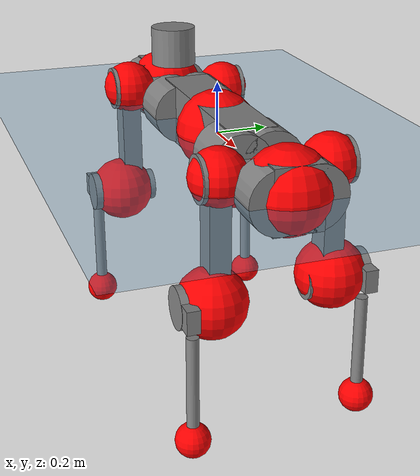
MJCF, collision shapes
<mujoco model="anymal_c">
  <compiler angle="radian" assetdir="assets" balanceinertia="true" inertiafromgeom="false"/>

  <option timestep="0.005" density="1.2" viscosity="2e-05"/>

  <size nkey="1"/>

  <visual>
    <quality shadowsize="8192"/>
    <map shadowclip="0.5"/>
  </visual>

  <default>
    <default class="/">
      <material specular="0" shininess="0.25"/>
      <geom contype="0" conaffinity="0" group="1" solref="-1000 -80"/>
      <site size="0.01 0.005 0.005" group="5"/>
      <general forcelimited="true" forcerange="-80 80" biastype="affine" gainprm="80" biasprm="0 -80 -2"/>
      <default class="anymal_c">
        <joint armature="0.01" damping="0.01" frictionloss="0.1"/>
        <default class="visual">
          <geom type="mesh" group="2"/>
          <default class="visual_zflip"/>
        </default>
        <default class="collision">
          <geom type="cylinder" group="3"/>
          <default class="foot">
            <geom size="0.03 0 0" type="sphere" condim="6" priority="1" friction="0.8 0.02 0.01" solimp="0.015 1 0.03"/>
          </default>
        </default>
      </default>
      <default class="reward_collision_sphere">
        <geom group="5" rgba="1 0 0 1"/>
      </default>
    </default>
  </default>

  <asset>
    <texture type="skybox" colorspace="auto" name="//unnamed_texture_0" builtin="gradient" rgb1="0.95 0.95 0.95" rgb2="0.95 0.95 0.95" width="100" height="600"/>
    <texture type="2d" colorspace="auto" name="texplane" builtin="checker" rgb1="0.345 0.575 0.748" rgb2="0.345 0.575 0.748" markrgb="1 1 1" width="512" height="512"/>
    <texture type="2d" colorspace="linear" name="base" file="base.png"/>
    <texture type="2d" colorspace="linear" name="top_shell" file="top_shell.png"/>
    <texture type="2d" colorspace="linear" name="bottom_shell" file="bottom_shell.png"/>
    <texture type="2d" colorspace="linear" name="remote" file="remote.png"/>
    <texture type="2d" colorspace="linear" name="hatch" file="hatch.png"/>
    <texture type="2d" colorspace="linear" name="handle" file="handle.png"/>
    <texture type="2d" colorspace="linear" name="face" file="face.png"/>
    <texture type="2d" colorspace="linear" name="battery" file="battery.png"/>
    <texture type="2d" colorspace="linear" name="lidar_cage" file="lidar_cage.png"/>
    <texture type="2d" colorspace="linear" name="depth_camera" file="depth_camera.png"/>
    <texture type="2d" colorspace="linear" name="wide_angle_camera" file="wide_angle_camera.png"/>
    <texture type="2d" colorspace="linear" name="lidar" file="lidar.png"/>
    <texture type="2d" colorspace="linear" name="drive" file="drive.png"/>
    <texture type="2d" colorspace="linear" name="hip_l" file="hip_l.png"/>
    <texture type="2d" colorspace="linear" name="shank_l" file="shank_l.png"/>
    <texture type="2d" colorspace="linear" name="foot" file="foot.png"/>
    <texture type="2d" colorspace="linear" name="thigh" file="thigh.png"/>
    <texture type="2d" colorspace="linear" name="shank_r" file="shank_r.png"/>
    <texture type="2d" colorspace="linear" name="hip_r" file="hip_r.png"/>
    <material name="MatPlane" class="/" texture="texplane" texuniform="true" texrepeat="2 2" specular="0.9" shininess="0.5"/>
    <material name="black_plastic" class="/" rgba="0.007 0.007 0.007 1"/>
    <material name="green" class="/" rgba="0.052 0.178 0.033 1"/>
    <material name="red" class="/" rgba="0.178 0.006 0.005 1"/>
    <material name="yellow" class="/" rgba="0.178 0.119 0.006 1"/>
    <material name="lwl" class="/" rgba="0.8 0.8 0.8 1"/>
    <material name="base" class="/" texture="base"/>
    <material name="top_shell" class="/" texture="top_shell"/>
    <material name="bottom_shell" class="/" texture="bottom_shell"/>
    <material name="hip_l" class="/" texture="hip_l"/>
    <material name="thigh" class="/" texture="thigh"/>
    <material name="shank_l" class="/" texture="shank_l"/>
    <material name="foot" class="/" texture="foot"/>
    <material name="hip_r" class="/" texture="hip_r"/>
    <material name="shank" class="/" texture="shank_r"/>
    <material name="hatch" class="/" texture="hatch"/>
    <material name="remote" class="/" texture="remote"/>
    <material name="handle" class="/" texture="handle"/>
    <material name="face" class="/" texture="face"/>
    <material name="depth_camera" class="/" texture="depth_camera"/>
    <material name="wide_angle_camera" class="/" texture="wide_angle_camera"/>
    <material name="battery" class="/" texture="battery"/>
    <material name="lidar_cage" class="/" texture="lidar_cage"/>
    <material name="lidar" class="/" texture="lidar"/>
    <material name="drive" class="/" texture="drive"/>
    <mesh name="base_0" class="/" file="base_0.obj"/>
    <mesh name="base_1" class="/" file="base_1.obj"/>
    <mesh name="base_2" class="/" file="base_2.obj"/>
    <mesh name="base_3" class="/" file="base_3.obj"/>
    <mesh name="base_4" class="/" file="base_4.obj"/>
    <mesh name="base_5" class="/" file="base_5.obj"/>
    <mesh name="top_shell" class="/" file="top_shell.obj"/>
    <mesh name="bottom_shell" class="/" file="bottom_shell.obj"/>
    <mesh name="remote" class="/" file="remote.obj"/>
    <mesh name="handle" class="/" file="handle.obj"/>
    <mesh name="face" class="/" file="face.obj"/>
    <mesh name="wide_angle_camera" class="/" file="wide_angle_camera.obj"/>
    <mesh name="depth_camera" class="/" file="depth_camera.obj"/>
    <mesh name="battery" class="/" file="battery.obj"/>
    <mesh name="lidar_cage" class="/" file="lidar_cage.obj"/>
    <mesh name="lidar" class="/" file="lidar.obj"/>
    <mesh name="drive" class="/" file="drive.obj"/>
    <mesh name="hip_l" class="/" file="hip_l.obj"/>
    <mesh name="thigh" class="/" file="thigh.obj"/>
    <mesh name="shank_l" class="/" file="shank_l.obj"/>
    <mesh name="foot" class="/" file="foot.obj"/>
    <mesh name="hip_r" class="/" file="hip_r.obj"/>
    <mesh name="hatch" class="/" file="hatch.obj"/>
    <mesh name="shank_r" class="/" file="shank_r.obj"/>
  </asset>

  <worldbody>
    <geom name="floor" class="/" size="100 100 0.125" type="plane" group="0" material="MatPlane"/>
    <light name="toplight_shadow" class="/" pos="0 0 5" dir="0.0990148 0.0990148 -0.990148" type="directional" ambient="0.04 0.04 0.04" diffuse="0.55 0.55 0.55" specular="0.12 0.12 0.12"/>
    <light name="toplight_fill" class="/" pos="0 0 5" dir="0.0990148 0.0990148 -0.990148" type="directional" castshadow="false" ambient="0.04 0.04 0.04" diffuse="0.3 0.3 0.3" specular="0.08 0.08 0.08"/>
    <body name="trunk" childclass="anymal_c" pos="-0.00155855 -0.00108261 0.00996614" quat="1 0.000250943 0.000606716 0.000736438">
      <inertial pos="0.0149509 0.0127273 0.073696" quat="0.498011 0.519667 0.501439 0.480094" mass="45.5081" diaginertia="4.35483 0.243921 1.96057"/>
      <joint name="//unnamed_joint_0" type="free" armature="0" damping="0" frictionloss="0"/>
      <geom name="//unnamed_geom_1" class="visual" material="green" mesh="base_0"/>
      <geom name="//unnamed_geom_2" class="visual" material="yellow" mesh="base_1"/>
      <geom name="//unnamed_geom_3" class="visual" material="red" mesh="base_2"/>
      <geom name="//unnamed_geom_4" class="visual" material="black_plastic" mesh="base_3"/>
      <geom name="//unnamed_geom_5" class="visual" material="lwl" mesh="base_4"/>
      <geom name="//unnamed_geom_6" class="visual" material="base" mesh="base_5"/>
      <geom name="trunk_1" class="collision" size="0.387857 0.0936207 0.12037" type="box"/>
      <geom name="trunk_2" class="collision" size="0.12037 0.0969643" pos="0.337003 0.0602562 0" quat="0.707107 0 0.707107 0"/>
      <geom name="trunk_3" class="collision" size="0.12037 0.0969643" pos="-0.337003 0.0602562 0" quat="0.707107 0 0.707107 0"/>
      <geom name="trunk_4" class="collision" size="0.12037 0.0969643" pos="0.337003 -0.0602562 0" quat="0.707107 0 0.707107 0"/>
      <geom name="trunk_5" class="collision" size="0.12037 0.0969643" pos="-0.337003 -0.0602562 0" quat="0.707107 0 0.707107 0"/>
      <geom name="//unnamed_geom_12" class="visual" material="top_shell" mesh="top_shell"/>
      <geom name="//unnamed_geom_13" class="visual" material="bottom_shell" mesh="bottom_shell"/>
      <geom name="//unnamed_geom_14" class="visual" material="remote" mesh="remote"/>
      <geom name="//unnamed_geom_15" class="visual" material="handle" mesh="handle"/>
      <geom name="//unnamed_geom_16" class="visual" pos="0.642243 0 0" quat="1 0 0 0" material="face" mesh="face"/>
      <geom name="trunk_6" class="collision" size="0.0735592 0.0936207 0.12037" pos="0.727462 0 0" type="box"/>
      <geom name="//unnamed_geom_18" class="collision" size="0.12037 0.0735592" pos="0.727462 0.0602562 0" quat="0.707107 0 0.707107 0"/>
      <geom name="//unnamed_geom_19" class="collision" size="0.12037 0.0735592" pos="0.727462 -0.0602562 0" quat="0.707107 0 0.707107 0"/>
      <geom name="//unnamed_geom_20" class="visual" pos="0.715301 0 -0.0471806" quat="0.965926 0 0.258819 0" material="depth_camera" mesh="depth_camera"/>
      <geom name="//unnamed_geom_21" class="visual" pos="0.794862 0 0.0239831" material="wide_angle_camera" mesh="wide_angle_camera"/>
      <geom name="//unnamed_geom_22" class="visual_zflip" pos="-0.642243 0 0" quat="0 0 0 1" material="face" mesh="face"/>
      <geom name="trunk_7" class="collision" size="0.0735592 0.0936207 0.12037" pos="-0.727462 0 0" quat="0 0 0 1" type="box"/>
      <geom name="//unnamed_geom_24" class="collision" size="0.12037 0.0735592" pos="-0.727462 -0.0602562 0" quat="0 -0.707107 0 0.707107"/>
      <geom name="//unnamed_geom_25" class="collision" size="0.12037 0.0735592" pos="-0.727462 0.0602562 0" quat="0 -0.707107 0 0.707107"/>
      <geom name="//unnamed_geom_26" class="visual" pos="-0.715301 0 -0.0471806" quat="0 -0.258819 0 0.965926" material="depth_camera" mesh="depth_camera"/>
      <geom name="//unnamed_geom_27" class="visual_zflip" pos="-0.794862 0 0.0239831" quat="0 0 0 1" material="wide_angle_camera" mesh="wide_angle_camera"/>
      <geom name="//unnamed_geom_28" class="visual" material="battery" mesh="battery"/>
      <geom name="//unnamed_geom_29" class="visual" pos="0 0.0567829 0.0461402" quat="0.683013 -0.183013 0.183013 0.683013" material="depth_camera" mesh="depth_camera"/>
      <geom name="//unnamed_geom_30" class="visual" pos="0 -0.0567829 0.0461402" quat="0.683013 0.183013 0.183013 -0.683013" material="depth_camera" mesh="depth_camera"/>
      <geom name="//unnamed_geom_31" class="visual" pos="-0.563996 0 0.117752" quat="1 0 0 0" material="lidar_cage" mesh="lidar_cage"/>
      <geom name="trunk_8" class="collision" size="0.0936207 0.0802463" pos="-0.563996 0 0.213877"/>
      <geom name="//unnamed_geom_33" class="visual" pos="-0.563996 -0.000270547 0.227815" quat="0.707107 0 0 -0.707107" material="lidar" mesh="lidar"/>
      <geom name="//unnamed_geom_34" class="visual" pos="0.464677 0.0897869 -1.2787e-08" quat="0.258819 0.965926 0 0" material="drive" mesh="drive"/>
      <geom name="//unnamed_geom_35" class="visual" pos="0.464677 -0.0897869 1.2787e-08" quat="0.258819 -0.965926 0 0" material="drive" mesh="drive"/>
      <geom name="//unnamed_geom_36" class="visual" pos="-0.464677 0.0897869 1.2787e-08" quat="0 0 0.965926 -0.258819" material="drive" mesh="drive"/>
      <geom name="//unnamed_geom_37" class="visual" pos="-0.464677 -0.0897869 -1.2787e-08" quat="0 0 -0.965926 -0.258819" material="drive" mesh="drive"/>
      <geom name="//unnamed_geom_38" class="visual" pos="0.179735 0 0.116951" quat="1 0 0 0" material="hatch" mesh="hatch"/>
      <geom name="//unnamed_geom_39" class="reward_collision_sphere" size="0.160493"/>
      <geom name="//unnamed_geom_40" class="reward_collision_sphere" size="0.160493" pos="0.697248 0 0"/>
      <geom name="//unnamed_geom_41" class="reward_collision_sphere" size="0.160493" pos="-0.697248 0 0"/>
      <site name="imu" pos="0.459596 0.0195396 0.0109746" size="0.0133744"/>
      <camera name="track" pos="0 -1.72161 0" quat="0.707107 0.707107 0 0" mode="trackcom"/>
      <camera name="ego_camera" pos="0.697248 0 -0.064083" quat="-0.5 -0.5 0.5 0.5"/>
      <body name="LF_HIP" pos="0.462267 0.0954719 9.0678e-06" quat="0.259154 0.965829 0.00265759 0.00256963">
        <inertial pos="0.0749241 -0.00561973 -0.0122993" quat="-0.0963476 0.730468 -0.11857 0.665639" mass="7.79302" diaginertia="0.0615359 0.00232593 0.0326005"/>
        <joint name="LF_HAA" pos="0 0 0" axis="0.998566 -0.0525498 -0.0102451" stiffness="0.0241487" range="-0.697 0.32488" armature="0.00409186" damping="0.0738975" frictionloss="0.155084"/>
        <geom name="//unnamed_geom_42" class="visual" pos="0 -0.000752202 0.000123549" quat="0.258819 -0.965926 0 0" material="hip_l" mesh="hip_l"/>
        <geom name="//unnamed_geom_43" class="visual" pos="0.0928114 -0.103657 -0.0653294" quat="0.183013 -0.683013 0.683013 0.183013" material="drive" mesh="drive"/>
        <geom name="//unnamed_geom_44" class="collision" size="0.066872 0.0936207" pos="0.0928114 -0.010295 -0.0110623" quat="-0.353553 -0.612372 0.612372 -0.353553"/>
        <body name="LF_THIGH" pos="0.0922758 -0.061133 -0.0670073" quat="0.182868 -0.682738 0.683406 0.182713">
          <inertial pos="0.0412109 -9.33742e-05 -0.406785" quat="0.990833 -0.0200899 -0.0884859 0.100087" mass="6.43977" diaginertia="0.310512 0.013858 0.0452587"/>
          <joint name="LF_HFE" pos="0 0 0" axis="0.997357 -0.0541835 -0.0483969" range="-3.05488 3.07469" armature="0.011549" damping="0.0321017" frictionloss="0.218227"/>
          <geom name="//unnamed_geom_45" class="visual" pos="0.0137012 2.15898e-05 0" quat="0.707107 0 0 -0.707107" material="thigh" mesh="thigh"/>
          <geom name="//unnamed_geom_46" class="collision" size="0.0869335 0.0534976" pos="0.0619776 0 0" quat="0.5 0.5 -0.5 -0.5"/>
          <geom name="//unnamed_geom_47" class="collision" size="0.050154 0.0401232 0.188999" pos="0.0464832 0 -0.226396" quat="0.707107 0 0 -0.707107" type="box"/>
          <geom name="//unnamed_geom_48" class="visual" pos="0.155409 0 -0.456591" quat="1 0 0 0" material="drive" mesh="drive"/>
          <geom name="//unnamed_geom_49" class="collision" size="0.066872 0.0936207" pos="0.046948 0 -0.456591" quat="0.707107 0 0.707107 0"/>
          <geom name="//unnamed_geom_50" class="reward_collision_sphere" size="0.106995" pos="0.038736 0 0"/>
          <body name="LF_SHANK" pos="0.143892 0.0118962 -0.44179" quat="0.999984 0.00447373 -0.00247951 -0.00260911">
            <inertial pos="0.0125219 -0.0531773 -0.12498" quat="0.994252 -0.100518 0.010997 -0.0351756" mass="1.56046" diaginertia="0.10046 0.00436671 0.0136213"/>
            <joint name="LF_KFE" pos="0 0 0" axis="0.999538 -0.0271899 -0.0135935" stiffness="0.00116318" range="-2.94927 3.01627" armature="0.00858687" damping="0.0653813" frictionloss="0.0724755"/>
            <geom name="//unnamed_geom_51" class="visual" pos="0.00446765 0.0238217 0" quat="0.707107 0 0 -0.707107" material="shank_l" mesh="shank_l"/>
            <geom name="LF_kfe_act" class="collision" size="0.0802463 0.0267488" pos="0.0309888 0 0" quat="0.5 0.5 -0.5 -0.5"/>
            <geom name="//unnamed_geom_53" class="collision" size="0.0769014 0.0451386 0.0254113" pos="0.0309888 -0.0494953 0" quat="0.5 0.5 -0.5 -0.5" type="box"/>
            <geom name="//unnamed_geom_54" class="visual" pos="0.0202191 -0.0680309 -0.541453" quat="0.382683 0 0 -0.92388" material="foot" mesh="foot"/>
            <geom name="LF_calf" class="collision" size="0.0234052 0.188916" pos="0.0202202 -0.0757076 -0.270727" quat="0.707107 0 0 -0.707107"/>
            <geom name="LF_foot" class="foot" size="0.0455185" pos="0.0202202 -0.0757076 -0.505407" quat="0.707107 0 0 -0.707107"/>
            <geom name="//unnamed_geom_57" class="reward_collision_sphere" size="0.133744" pos="-0.077472 0 0"/>
            <geom name="//unnamed_geom_58" class="reward_collision_sphere" size="0.066872" pos="0.0202202 -0.0757076 -0.505407"/>
            <site name="LF_foot" class="foot" pos="0.0202202 -0.0757076 -0.505407" quat="0.707107 0 0 -0.707107" size="0.0133744"/>
          </body>
        </body>
      </body>
      <body name="RF_HIP" pos="0.474037 -0.0916772 0.00185076" quat="0.258861 -0.965914 -5.993e-05 -1.27415e-05">
        <inertial pos="0.0754613 0.0150637 -0.0146111" quat="0.134976 0.679681 0.126542 0.70979" mass="6.21399" diaginertia="0.0503885 0.00184609 0.0311984"/>
        <joint name="RF_HAA" pos="0 0 0" axis="0.999568 0.02919 0.00339896" stiffness="0.0265764" range="-0.228442 0.66336" armature="0.0212316" damping="0.00656462" frictionloss="0.219101"/>
        <geom name="//unnamed_geom_59" class="visual" pos="0 0.000752196 0.000123548" quat="0.258819 0.965926 0 0" material="hip_r" mesh="hip_r"/>
        <geom name="//unnamed_geom_60" class="visual" pos="0.0928114 0.103657 -0.0653294" quat="0.183013 0.683013 0.683013 -0.183013" material="drive" mesh="drive"/>
        <geom name="//unnamed_geom_61" class="collision" size="0.066872 0.0936207" pos="0.0928114 0.010295 -0.0110623" quat="-0.353553 0.612372 0.612372 0.353553"/>
        <body name="RF_THIGH" pos="0.0996805 0.0489578 -0.059549" quat="0.184539 0.682966 0.682536 -0.183433">
          <inertial pos="0.0479374 -0.00261572 -0.392158" quat="0.994625 -0.0319004 -0.0256935 0.0951003" mass="9.77915" diaginertia="0.300657 0.0142058 0.0456703"/>
          <joint name="RF_HFE" pos="0 0 0" axis="0.998473 -0.0344647 0.0431771" stiffness="0.0127223" range="-3.43252 2.94896" armature="0.0122356" damping="0.0657695" frictionloss="0.0278393"/>
          <geom name="//unnamed_geom_62" class="visual" pos="0.0137012 2.15898e-05 0" quat="0.707107 0 0 -0.707107" material="thigh" mesh="thigh"/>
          <geom name="//unnamed_geom_63" class="collision" size="0.0869335 0.0534976" pos="0.0619776 0 0" quat="0.5 0.5 0.5 0.5"/>
          <geom name="//unnamed_geom_64" class="collision" size="0.050154 0.0401232 0.188999" pos="0.0464832 0 -0.226396" quat="0.707107 0 0 0.707107" type="box"/>
          <geom name="//unnamed_geom_65" class="visual" pos="0.155409 0 -0.456591" quat="1 0 0 0" material="drive" mesh="drive"/>
          <geom name="//unnamed_geom_66" class="collision" size="0.066872 0.0936207" pos="0.046948 0 -0.456591" quat="0.707107 0 0.707107 0"/>
          <geom name="//unnamed_geom_67" class="reward_collision_sphere" size="0.106995" pos="0.038736 0 0"/>
          <body name="RF_SHANK" pos="0.142796 0.0136078 -0.46295" quat="1 -0.000209577 -0.000320155 0.000509899">
            <inertial pos="0.00765356 0.0535587 -0.142704" quat="0.994889 0.0999892 -0.000532216 -0.0140717" mass="1.43571" diaginertia="0.105797 0.004921 0.0115297"/>
            <joint name="RF_KFE" pos="0 0 0" axis="0.999979 -0.00175715 0.00630883" range="-2.96653 2.9556" armature="0.0168826" damping="0.00208173" frictionloss="0.228648"/>
            <geom name="//unnamed_geom_68" class="visual" pos="0.00446762 -0.0238217 0" quat="0.707107 0 0 0.707107" material="shank" mesh="shank_r"/>
            <geom name="RF_kfe_act" class="collision" size="0.0802463 0.0267488" pos="0.0309888 0 0" quat="0.5 0.5 0.5 0.5"/>
            <geom name="//unnamed_geom_70" class="collision" size="0.0769014 0.0451386 0.0254113" pos="0.0309888 0.0494953 0" quat="0.5 0.5 0.5 0.5" type="box"/>
            <geom name="//unnamed_geom_71" class="visual" pos="0.0202213 0.0680309 -0.541453" quat="0.382683 0 0 0.92388" material="foot" mesh="foot"/>
            <geom name="RF_calf" class="collision" size="0.0234052 0.188916" pos="0.0202202 0.0757076 -0.270727" quat="0.707107 0 0 0.707107"/>
            <geom name="RF_foot" class="foot" size="0.064121" pos="0.0202202 0.0757076 -0.505407" quat="0.707107 0 0 0.707107"/>
            <geom name="//unnamed_geom_74" class="reward_collision_sphere" size="0.133744" pos="-0.077472 0 0"/>
            <geom name="//unnamed_geom_75" class="reward_collision_sphere" size="0.066872" pos="0.0202202 0.0757076 -0.505407"/>
            <site name="RF_foot" class="foot" pos="0.0202202 0.0757076 -0.505407" quat="0.707107 0 0 0.707107" size="0.0133744"/>
          </body>
        </body>
      </body>
      <body name="LH_HIP" pos="-0.450133 0.0827973 -0.00149026" quat="0.00229994 -0.000576846 0.965877 -0.258992">
        <inertial pos="0.0809232 2.22859e-05 -0.0141042" quat="0.154194 0.665764 0.0927484 0.724141" mass="6.63667" diaginertia="0.0644785 0.00219765 0.0462939"/>
        <joint name="LH_HAA" pos="0 0 0" axis="0.999589 -0.0243022 0.0152158" stiffness="0.0279317" range="-0.610276 1.03665" armature="0.0226644" damping="0.0536269" frictionloss="0.137352"/>
        <geom name="//unnamed_geom_76" class="visual" pos="0 0.000752196 0.000123548" quat="-0.258819 -0.965926 0 0" material="hip_r" mesh="hip_r"/>
        <geom name="//unnamed_geom_77" class="visual" pos="0.0928114 0.103657 -0.0653294" quat="0.183013 0.683013 0.683013 -0.183013" material="drive" mesh="drive"/>
        <geom name="//unnamed_geom_78" class="collision" size="0.066872 0.0936207" pos="0.0928114 0.010295 -0.0110623" quat="-0.353553 0.612372 0.612372 0.353553"/>
        <body name="LH_THIGH" pos="0.102091 0.0780079 -0.0628785" quat="0.182883 0.68302 0.682927 -0.183434">
          <inertial pos="0.0485169 -0.0114886 -0.390843" quat="0.992381 -0.00129774 -0.0794355 0.0941693" mass="7.26547" diaginertia="0.266752 0.0156909 0.0414018"/>
          <joint name="LH_HFE" pos="0 0 0" axis="0.998239 0.0182844 -0.0564294" range="-3.13455 3.17633" armature="0.0184771" damping="0.044967" frictionloss="0.0955078"/>
          <geom name="//unnamed_geom_79" class="visual" pos="0.0137012 2.15898e-05 0" quat="0.707107 0 0 -0.707107" material="thigh" mesh="thigh"/>
          <geom name="//unnamed_geom_80" class="collision" size="0.0869335 0.0534976" pos="0.0619776 0 0" quat="0.5 0.5 -0.5 -0.5"/>
          <geom name="//unnamed_geom_81" class="collision" size="0.050154 0.0401232 0.188999" pos="0.0464832 0 -0.226396" quat="0.707107 0 0 -0.707107" type="box"/>
          <geom name="//unnamed_geom_82" class="visual" pos="0.155409 0 -0.456591" quat="1 0 0 0" material="drive" mesh="drive"/>
          <geom name="//unnamed_geom_83" class="collision" size="0.066872 0.0936207" pos="0.046948 0 -0.456591" quat="0.707107 0 0.707107 0"/>
          <geom name="//unnamed_geom_84" class="reward_collision_sphere" size="0.106995" pos="0.038736 0 0"/>
          <body name="LH_SHANK" pos="0.164844 -0.000561312 -0.45053" quat="0.999995 -0.00021269 -0.00253904 0.00188027">
            <inertial pos="0.00891019 0.0520583 -0.12903" quat="0.985152 0.152503 -0.0686605 0.0387908" mass="1.41131" diaginertia="0.0903857 0.00428843 0.0141483"/>
            <joint name="LH_KFE" pos="0 0 0" axis="0.998576 0.039784 -0.0355425" range="-3.17607 3.15172" armature="0.0201252" damping="0.0177886" frictionloss="0.0705821"/>
            <geom name="//unnamed_geom_85" class="visual" pos="0.00446762 -0.0238217 0" quat="-0.707107 0 0 -0.707107" material="shank" mesh="shank_r"/>
            <geom name="LH_kfe_act" class="collision" size="0.0802463 0.0267488" pos="0.0309888 0 0" quat="0.5 0.5 -0.5 -0.5"/>
            <geom name="//unnamed_geom_87" class="collision" size="0.0769014 0.0451386 0.0254113" pos="0.0309888 0.0494953 0" quat="0.5 0.5 -0.5 -0.5" type="box"/>
            <geom name="//unnamed_geom_88" class="visual" pos="0.0202213 0.0680309 -0.541453" quat="-0.382683 0 0 -0.92388" material="foot" mesh="foot"/>
            <geom name="LH_calf" class="collision" size="0.0234052 0.188916" pos="0.0202202 0.0757076 -0.270727" quat="0.707107 0 0 -0.707107"/>
            <geom name="LH_foot" class="foot" size="0.0165915" pos="0.0202202 0.0757076 -0.505407" quat="0.707107 0 0 -0.707107"/>
            <geom name="//unnamed_geom_91" class="reward_collision_sphere" size="0.133744" pos="-0.077472 0 0"/>
            <geom name="//unnamed_geom_92" class="reward_collision_sphere" size="0.066872" pos="0.0202202 0.0757076 -0.505407"/>
            <site name="LH_foot" class="foot" pos="0.0202202 0.0757076 -0.505407" quat="0.707107 0 0 -0.707107" size="0.0133744"/>
          </body>
        </body>
      </body>
      <body name="RH_HIP" pos="-0.465535 -0.0763066 0.0069852" quat="-0.0043517 0.0031059 -0.96558 -0.260053">
        <inertial pos="0.101205 -0.0133577 -0.0255739" quat="-0.111394 0.703042 -0.14779 0.686645" mass="7.34234" diaginertia="0.0578018 0.00252141 0.0448017"/>
        <joint name="RH_HAA" pos="0 0 0" axis="1 0.000565387 -0.000367741" stiffness="0.0372735" range="-0.481727 0.198906" armature="0.0134849" damping="0.0543864" frictionloss="0.139866"/>
        <geom name="//unnamed_geom_93" class="visual" pos="0 -0.000752202 0.000123549" quat="-0.258819 0.965926 0 0" material="hip_l" mesh="hip_l"/>
        <geom name="//unnamed_geom_94" class="visual" pos="0.0928114 -0.103657 -0.0653294" quat="-0.183013 0.683013 -0.683013 -0.183013" material="drive" mesh="drive"/>
        <geom name="//unnamed_geom_95" class="collision" size="0.066872 0.0936207" pos="0.0928114 -0.010295 -0.0110623" quat="0.353553 0.612372 -0.612372 0.353553"/>
        <body name="RH_THIGH" pos="0.0918903 -0.0550605 -0.0804969" quat="-0.183636 0.682669 -0.683265 -0.18273">
          <inertial pos="0.0375816 0.00384896 -0.396783" quat="0.993212 -0.00285458 -0.0786344 0.0856622" mass="10.3317" diaginertia="0.370997 0.0167649 0.0501777"/>
          <joint name="RH_HFE" pos="0 0 0" axis="0.998318 -0.0215792 -0.0538108" stiffness="0.00728412" range="-3.15859 3.16988" armature="0.0176834" damping="0.0368257" frictionloss="0.139057"/>
          <geom name="//unnamed_geom_96" class="visual" pos="0.0137012 2.15898e-05 0" quat="0.707107 0 0 -0.707107" material="thigh" mesh="thigh"/>
          <geom name="//unnamed_geom_97" class="collision" size="0.0869335 0.0534976" pos="0.0619776 0 0" quat="0.5 0.5 0.5 0.5"/>
          <geom name="//unnamed_geom_98" class="collision" size="0.050154 0.0401232 0.188999" pos="0.0464832 0 -0.226396" quat="0.707107 0 0 0.707107" type="box"/>
          <geom name="//unnamed_geom_99" class="visual" pos="0.155409 0 -0.456591" quat="1 0 0 0" material="drive" mesh="drive"/>
          <geom name="//unnamed_geom_100" class="collision" size="0.066872 0.0936207" pos="0.046948 0 -0.456591" quat="0.707107 0 0.707107 0"/>
          <geom name="//unnamed_geom_101" class="reward_collision_sphere" size="0.106995" pos="0.038736 0 0"/>
          <body name="RH_SHANK" pos="0.168422 0.00376997 -0.459585" quat="0.999993 -0.00180291 0.000333063 -0.00325786">
            <inertial pos="0.0147153 -0.0526013 -0.130192" quat="0.992399 -0.0996546 -0.0540191 -0.0479037" mass="1.34802" diaginertia="0.0985291 0.00366456 0.0115456"/>
            <joint name="RH_KFE" pos="0 0 0" axis="0.999926 -0.00286521 -0.0117922" range="-3.07032 3.24353" armature="0.0229517" damping="0" frictionloss="0.13721"/>
            <geom name="//unnamed_geom_102" class="visual" pos="0.00446765 0.0238217 0" quat="0.707107 0 0 -0.707107" material="shank_l" mesh="shank_l"/>
            <geom name="RH_kfe_act" class="collision" size="0.0802463 0.0267488" pos="0.0309888 0 0" quat="0.5 0.5 0.5 0.5"/>
            <geom name="//unnamed_geom_104" class="collision" size="0.0769014 0.0451386 0.0254113" pos="0.0309888 -0.0494953 0" quat="0.5 0.5 0.5 0.5" type="box"/>
            <geom name="//unnamed_geom_105" class="visual" pos="0.0202191 -0.0680309 -0.541453" quat="0.382683 0 0 -0.92388" material="foot" mesh="foot"/>
            <geom name="RH_calf" class="collision" size="0.0234052 0.188916" pos="0.0202202 -0.0757076 -0.270727" quat="0.707107 0 0 0.707107"/>
            <geom name="RH_foot" class="foot" size="0.0546005" pos="0.0202202 -0.0757076 -0.505407" quat="0.707107 0 0 0.707107"/>
            <geom name="//unnamed_geom_108" class="reward_collision_sphere" size="0.133744" pos="-0.077472 0 0"/>
            <geom name="//unnamed_geom_109" class="reward_collision_sphere" size="0.066872" pos="0.0202202 -0.0757076 -0.505407"/>
            <site name="RH_foot" class="foot" pos="0.0202202 -0.0757076 -0.505407" quat="0.707107 0 0 0.707107" size="0.0133744"/>
          </body>
        </body>
      </body>
    </body>
  </worldbody>

  <contact>
    <pair class="/" geom1="floor" geom2="LF_foot" name="//unnamed_contact_0"/>
    <pair class="/" geom1="floor" geom2="RF_foot" name="//unnamed_contact_1"/>
    <pair class="/" geom1="floor" geom2="LH_foot" name="//unnamed_contact_2"/>
    <pair class="/" geom1="floor" geom2="RH_foot" name="//unnamed_contact_3"/>
  </contact>

  <actuator>
    <general name="LF_HAA" class="/" joint="LF_HAA" forcerange="-118.771 118.771" gainprm="78.613" biasprm="0 -78.613 -3.11144"/>
    <general name="LF_HFE" class="/" joint="LF_HFE" forcerange="-140.822 140.822" gainprm="78.613" biasprm="0 -78.613 -3.11144"/>
    <general name="LF_KFE" class="/" joint="LF_KFE" forcerange="-124.408 124.408" gainprm="78.613" biasprm="0 -78.613 -3.11144"/>
    <general name="RF_HAA" class="/" joint="RF_HAA" forcerange="-143.215 143.215" gainprm="78.613" biasprm="0 -78.613 -3.11144"/>
    <general name="RF_HFE" class="/" joint="RF_HFE" forcerange="-78.6609 78.6609" gainprm="78.613" biasprm="0 -78.613 -3.11144"/>
    <general name="RF_KFE" class="/" joint="RF_KFE" forcerange="-156.857 156.857" gainprm="78.613" biasprm="0 -78.613 -3.11144"/>
    <general name="LH_HAA" class="/" joint="LH_HAA" forcerange="-110.54 110.54" gainprm="78.613" biasprm="0 -78.613 -3.11144"/>
    <general name="LH_HFE" class="/" joint="LH_HFE" forcerange="-157.723 157.723" gainprm="78.613" biasprm="0 -78.613 -3.11144"/>
    <general name="LH_KFE" class="/" joint="LH_KFE" forcerange="-123.185 123.185" gainprm="78.613" biasprm="0 -78.613 -3.11144"/>
    <general name="RH_HAA" class="/" joint="RH_HAA" forcerange="-128.692 128.692" gainprm="78.613" biasprm="0 -78.613 -3.11144"/>
    <general name="RH_HFE" class="/" joint="RH_HFE" forcerange="-163.425 163.425" gainprm="78.613" biasprm="0 -78.613 -3.11144"/>
    <general name="RH_KFE" class="/" joint="RH_KFE" forcerange="-59.6964 59.6964" gainprm="78.613" biasprm="0 -78.613 -3.11144"/>
  </actuator>

  <sensor>
    <gyro site="imu" name="imu_angular_velocity"/>
    <velocimeter site="imu" name="imu_linear_velocity"/>
    <framelinvel objtype="site" objname="LF_foot" name="LF_foot_global_linear_velocity"/>
    <framelinvel objtype="site" objname="RF_foot" name="RF_foot_global_linear_velocity"/>
    <framelinvel objtype="site" objname="LH_foot" name="LH_foot_global_linear_velocity"/>
    <framelinvel objtype="site" objname="RH_foot" name="RH_foot_global_linear_velocity"/>
  </sensor>

  <keyframe>
    <key name="home" qpos="0 0 0.55 1 0 0 0 0 0.4 -0.8 0 -0.4 0.8 0 -0.4 0.8 0 0.4 -0.8"/>
  </keyframe>
</mujoco>
